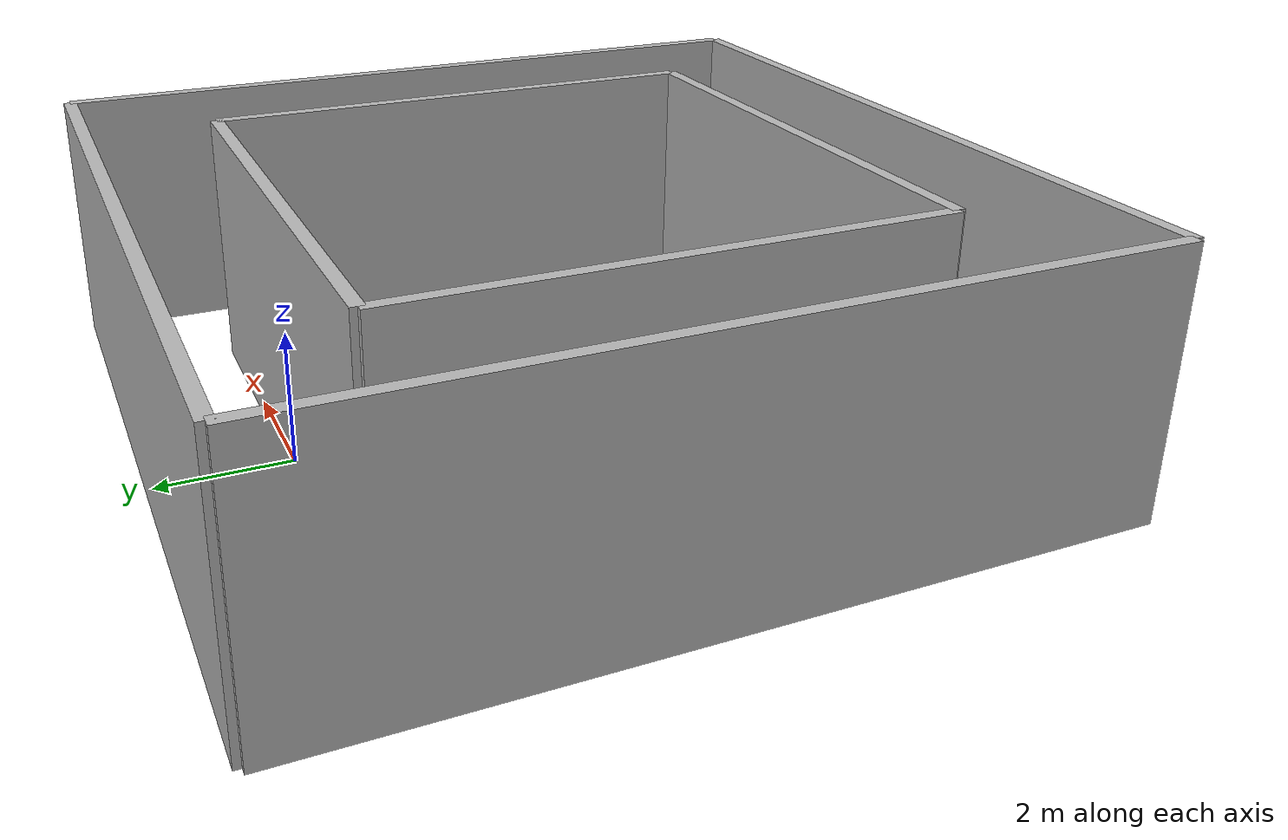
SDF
<?xml version="1.0"?>
<sdf version="1.6">
  <model name="poster_wall">
    <static>true</static>
    <link name="body_link">
      <collision name="body_collision">
        <pose>0 -4 2 0 0 0</pose>
        <geometry>
          <box>
            <size>8 8 4</size>
          </box>
        </geometry>
      </collision>

      <visual name="wall_1">
        <pose>0 0 2 0 0 0</pose>
        <geometry>
          <box>
            <size>8 0.2 4</size>
          </box>
        </geometry>
        <material> <!-- Body material -->
          <script>
            <uri>model://poster_wall/materials/scripts/repeated1.material</uri>
            <name>RepeatedTexture1</name>
          </script>
        </material> <!-- End Body Material -->
      </visual>

      <visual name="wall_2">
        <pose>4 -4 2 0 0 1.57</pose>
        <geometry>
          <box>
            <size>8 0.2 4</size>
          </box>
        </geometry>
        <material> <!-- Body material -->
          <script>
            <uri>model://poster_wall/materials/scripts/repeated2.material</uri>
            <name>RepeatedTexture2</name>
          </script>
        </material> <!-- End Body Material -->
      </visual>

      <visual name="wall_3">
        <pose>-4 -4 2 0 0 -1.57</pose>
        <geometry>
          <box>
            <size>8 0.2 4</size>
          </box>
        </geometry>
        <material> <!-- Body material -->
          <script>
            <uri>model://poster_wall/materials/scripts/repeated3.material</uri>
            <name>RepeatedTexture3</name>
          </script>
        </material> <!-- End Body Material -->
      </visual>

      <visual name="wall_4">
        <pose>0 -8 2 0 0 0</pose>
        <geometry>
          <box>
            <size>8 0.2 4</size>
          </box>
        </geometry>
        <material> <!-- Body material -->
          <script>
            <uri>model://poster_wall/materials/scripts/repeated4.material</uri>
            <name>RepeatedTexture4</name>
          </script>
        </material> <!-- End Body Material -->
      </visual>

      <visual name="wall_5">
        <pose>0 2 2 0 0 0</pose>
        <geometry>
          <box>
            <size>12 0.2 4</size>
          </box>
        </geometry>
        <material> <!-- Body material -->
          <script>
            <uri>model://poster_wall/materials/scripts/repeated5.material</uri>
            <name>RepeatedTexture5</name>
          </script>
        </material> <!-- End Body Material -->
      </visual>

      <visual name="wall_6">
        <pose>6 -4 2 0 0 1.57</pose>
        <geometry>
          <box>
            <size>12 0.2 4</size>
          </box>
        </geometry>
        <material> <!-- Body material -->
          <script>
            <uri>model://poster_wall/materials/scripts/repeated6.material</uri>
            <name>RepeatedTexture6</name>
          </script>
        </material> <!-- End Body Material -->
      </visual>

      <visual name="wall_7">
        <pose>-6 -4 2 0 0 -1.57</pose>
        <geometry>
          <box>
            <size>12 0.2 4</size>
          </box>
        </geometry>
        <material> <!-- Body material -->
          <script>
            <uri>model://poster_wall/materials/scripts/repeated7.material</uri>
            <name>RepeatedTexture7</name>
          </script>
        </material> <!-- End Body Material -->
      </visual>

      <visual name="wall_8">
        <pose>0 -10 2 0 0 0</pose>
        <geometry>
          <box>
            <size>12 0.2 4</size>
          </box>
        </geometry>
        <material> <!-- Body material -->
          <script>
            <uri>model://poster_wall/materials/scripts/repeated8.material</uri>
            <name>RepeatedTexture8</name>
          </script>
        </material> <!-- End Body Material -->
      </visual>

    </link>
  </model>
</sdf>
